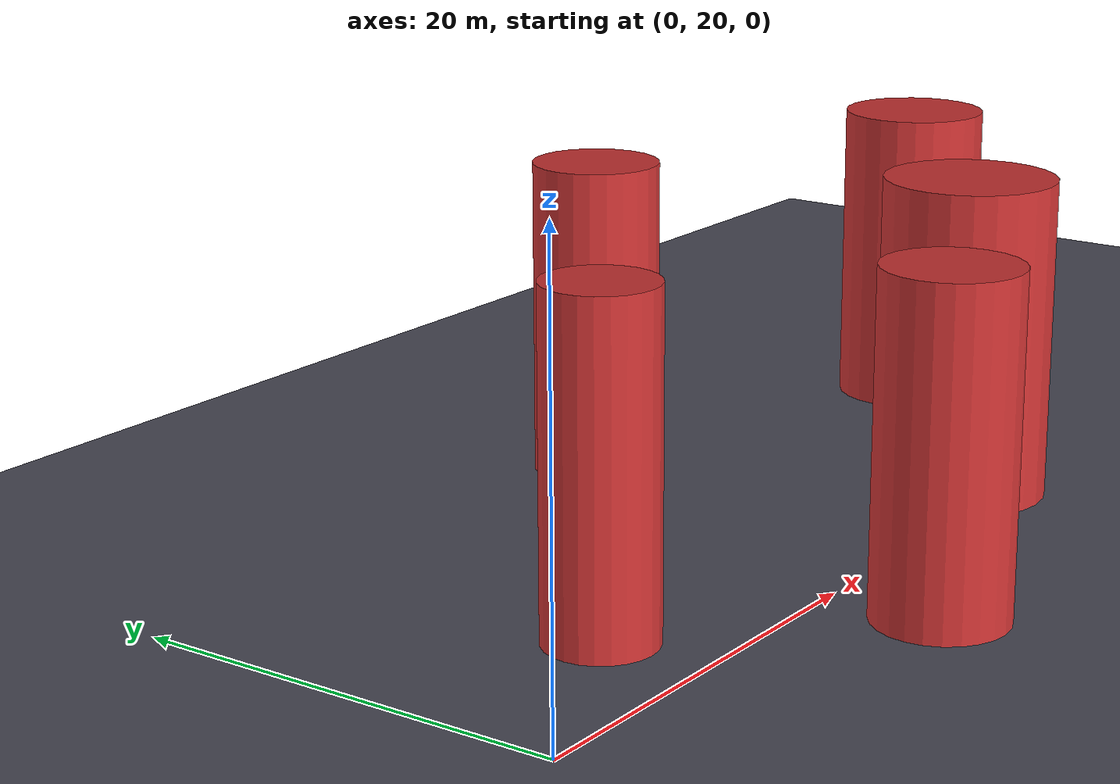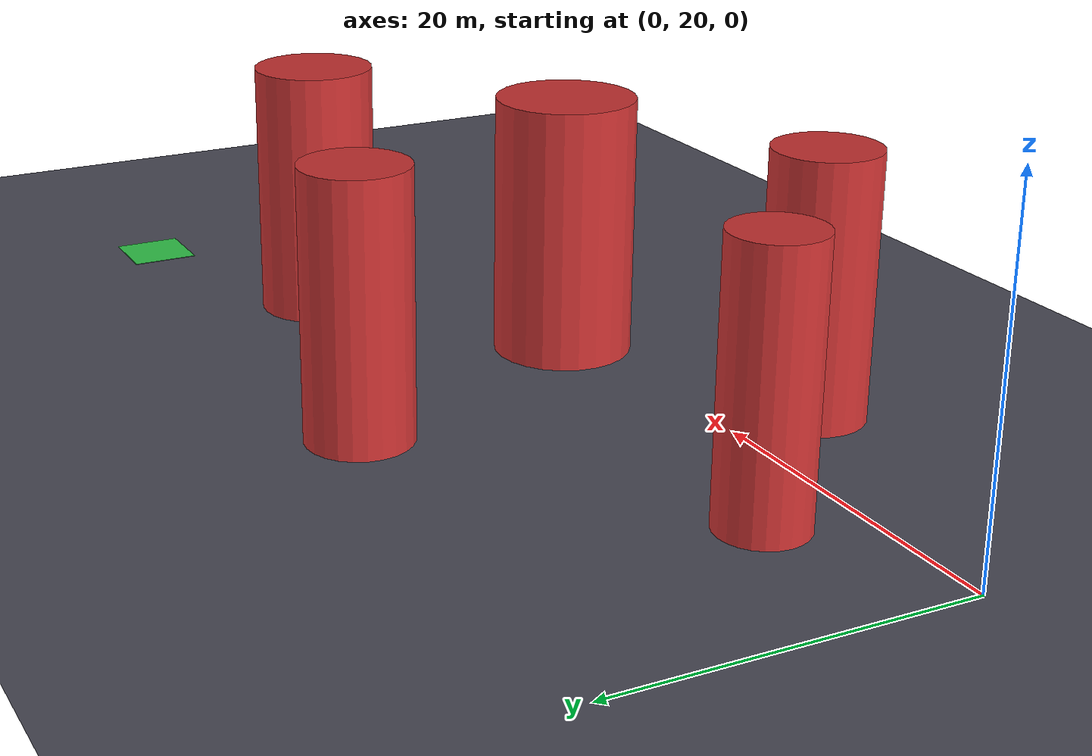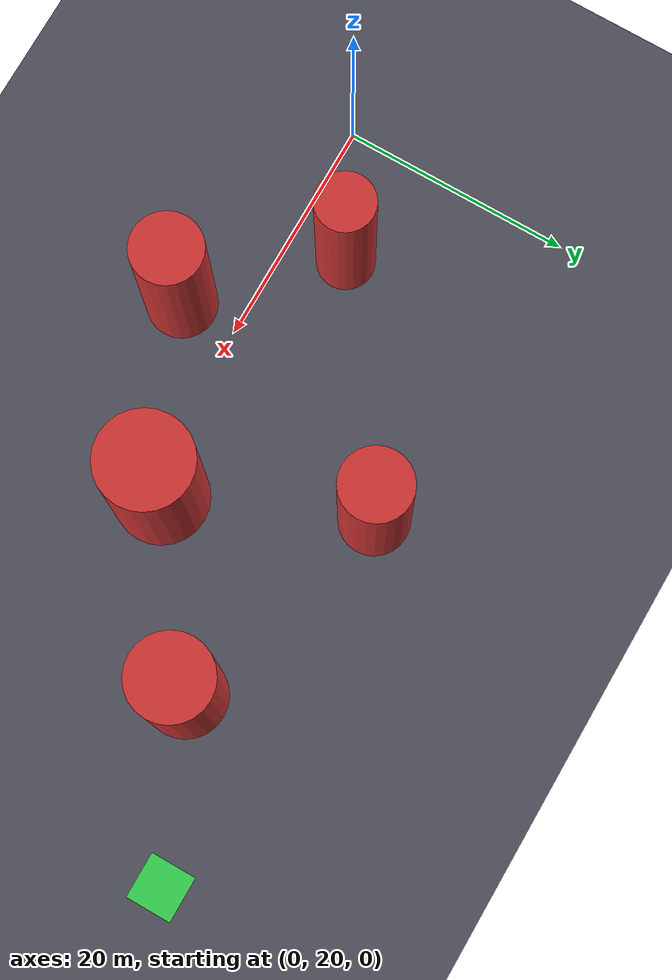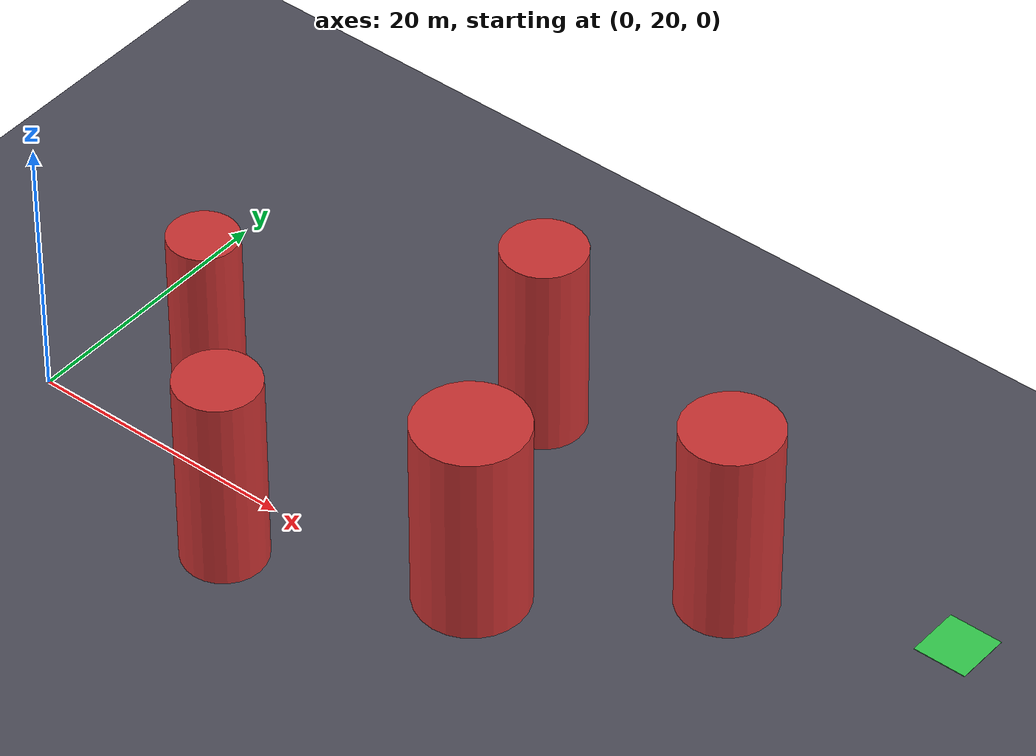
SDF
<?xml version="1.0" ?>
<sdf version="1.8">
  <world name="cyber_resilient_arena">
    <physics name="1ms" type="ignored">
      <max_step_size>0.002</max_step_size>
      <real_time_factor>1.0</real_time_factor>
    </physics>

    <!-- Sun Light -->
    <light type="directional" name="sun">
      <cast_shadows>true</cast_shadows>
      <pose>0 0 50 0 0 0</pose>
      <diffuse>0.8 0.8 0.8 1</diffuse>
      <specular>0.2 0.2 0.2 1</specular>
      <direction>-0.5 0.1 -0.9</direction>
    </light>

    <!-- Ground Plane 100m x 100m -->
    <model name="ground_plane">
      <static>true</static>
      <link name="link">
        <collision name="collision">
          <geometry>
            <plane>
              <normal>0 0 1</normal>
              <size>120 120</size>
            </plane>
          </geometry>
        </collision>
        <visual name="visual">
          <geometry>
            <plane>
              <normal>0 0 1</normal>
              <size>120 120</size>
            </plane>
          </geometry>
          <material>
            <ambient>0.2 0.2 0.25 1</ambient>
            <diffuse>0.3 0.3 0.35 1</diffuse>
          </material>
        </visual>
      </link>
    </model>

    <!-- Obstacle 1: Cylinder at (20, 15) r=3m h=15m -->
    <model name="obstacle_1">
      <static>true</static>
      <pose>20 15 7.5 0 0 0</pose>
      <link name="link">
        <collision name="col">
          <geometry><cylinder><radius>3.0</radius><length>15.0</length></cylinder></geometry>
        </collision>
        <visual name="vis">
          <geometry><cylinder><radius>3.0</radius><length>15.0</length></cylinder></geometry>
          <material><diffuse>0.8 0.2 0.2 1</diffuse></material>
        </visual>
      </link>
    </model>

    <!-- Obstacle 2: Cylinder at (35, 22) r=4m h=15m (directly near direct start-goal path) -->
    <model name="obstacle_2">
      <static>true</static>
      <pose>35 22 7.5 0 0 0</pose>
      <link name="link">
        <collision name="col">
          <geometry><cylinder><radius>4.0</radius><length>15.0</length></cylinder></geometry>
        </collision>
        <visual name="vis">
          <geometry><cylinder><radius>4.0</radius><length>15.0</length></cylinder></geometry>
          <material><diffuse>0.8 0.2 0.2 1</diffuse></material>
        </visual>
      </link>
    </model>

    <!-- Obstacle 3: Cylinder at (48, 32) r=3.5m h=15m -->
    <model name="obstacle_3">
      <static>true</static>
      <pose>48 32 7.5 0 0 0</pose>
      <link name="link">
        <collision name="col">
          <geometry><cylinder><radius>3.5</radius><length>15.0</length></cylinder></geometry>
        </collision>
        <visual name="vis">
          <geometry><cylinder><radius>3.5</radius><length>15.0</length></cylinder></geometry>
          <material><diffuse>0.8 0.2 0.2 1</diffuse></material>
        </visual>
      </link>
    </model>

    <!-- Obstacle 4: Cylinder at (28, 38) r=3.0m h=15m -->
    <model name="obstacle_4">
      <static>true</static>
      <pose>28 38 7.5 0 0 0</pose>
      <link name="link">
        <collision name="col">
          <geometry><cylinder><radius>3.0</radius><length>15.0</length></cylinder></geometry>
        </collision>
        <visual name="vis">
          <geometry><cylinder><radius>3.0</radius><length>15.0</length></cylinder></geometry>
          <material><diffuse>0.8 0.2 0.2 1</diffuse></material>
        </visual>
      </link>
    </model>

    <!-- Obstacle 5: Cylinder at (10, 25) r=2.5m h=15m -->
    <model name="obstacle_5">
      <static>true</static>
      <pose>10 25 7.5 0 0 0</pose>
      <link name="link">
        <collision name="col">
          <geometry><cylinder><radius>2.5</radius><length>15.0</length></cylinder></geometry>
        </collision>
        <visual name="vis">
          <geometry><cylinder><radius>2.5</radius><length>15.0</length></cylinder></geometry>
          <material><diffuse>0.8 0.2 0.2 1</diffuse></material>
        </visual>
      </link>
    </model>

    <!-- Landing Zone Mark at (62, 38, 0.05) -->
    <model name="landing_pad">
      <static>true</static>
      <pose>62 38 0.02 0 0 0</pose>
      <link name="link">
        <visual name="vis">
          <geometry><box><size>4.0 4.0 0.04</size></box></geometry>
          <material><diffuse>0.2 0.8 0.3 1</diffuse></material>
        </visual>
      </link>
    </model>

  </world>
</sdf>
